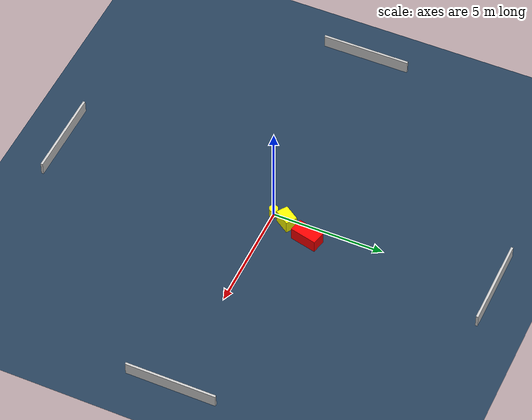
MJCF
<?xml version="1.0" ?>
<mujoco model="generated_environment">
  <option timestep="0.01" integrator="RK4" cone="elliptic"/>
  <default>
    <geom density="1"/>
  </default>
  <asset>
    <texture builtin="gradient" height="3072" name="skybox" rgb1="0.3 0.5 0.7" rgb2="0 0 0" type="skybox" width="512"/>
    <texture builtin="checker" height="300" name="groundplane" rgb1="0.2 0.3 0.4" rgb2="0.1 0.2 0.3" type="2d" width="300"/>
    <material name="groundplane" reflectance="0.2" texrepeat="5 5" texture="groundplane"/>
  </asset>
  <worldbody>
    <light dir="0 0 -1" directional="true" pos="0 0 1.5"/>
    <geom condim="3" friction="0.5 0.005 0.001" material="groundplane" name="floor" pos="0 0 0" size="0 0 0.05" type="plane"/>
    <body name="walls">
      <geom name="wall_1" condim="4" pos="-10.0 0.0 0.3" rgba="0.800000011920929 0.800000011920929 0.800000011920929 1.0" size="0.05 2.0 0.3" type="box"/>
      <geom name="wall_2" condim="4" pos="10.0 0.0 0.3" rgba="0.800000011920929 0.800000011920929 0.800000011920929 1.0" size="0.05 2.0 0.3" type="box"/>
      <geom name="wall_3" condim="4" pos="0.0 -10.0 0.3" rgba="0.800000011920929 0.800000011920929 0.800000011920929 1.0" size="2.0 0.05 0.3" type="box"/>
      <geom name="wall_4" condim="4" pos="0.0 10.0 0.3" rgba="0.800000011920929 0.800000011920929 0.800000011920929 1.0" size="2.0 0.05 0.3" type="box"/>
    </body>
    <body name="robot">
      <joint name="joint_x" type="slide" pos="0 0 0" axis="1 0 0"/>
      <joint name="joint_y" type="slide" pos="0 0 0" axis="0 1 0"/>
      <geom name="robot" type="cylinder" pos="0.0 0.0 0.2" size="0.2 0.2 0.0" mass="5.0" friction="1.0 0.005 0.0001" condim="4" rgba="1.0 1.0 0.0 1.0"/>
    </body>
    <body name="obstacle_1_movable">
      <geom name="obstacle_1_movable" condim="4" pos="0.2520980565743772 0.7187970249417286 0.3" euler="0 0 146.40633377504224" friction="0.0 0.005 0.001" rgba="1.0 1.0 0.0 1.0" size="0.2672145403756741 0.3877130210159335 0.3" type="box" mass="0.1"/>
      <joint type="free"/>
    </body>
    <body name="obstacle_2_static">
      <geom name="obstacle_2_static" condim="4" pos="0.7172156131619646 1.8638253050158216 0.3" euler="0 0 166.6885272369617" friction="0.0 0.005 0.001" rgba="1.0 0.0 0.0 1.0" size="0.31116380871432664 0.6080745443631878 0.3" type="box"/>
    </body>
  </worldbody>
  <actuator>
    <motor name="actuator_x" joint="joint_x" gear="1" ctrlrange="-1 1"/>
    <motor name="actuator_y" joint="joint_y" gear="1" ctrlrange="-1 1"/>
  </actuator>
</mujoco>
